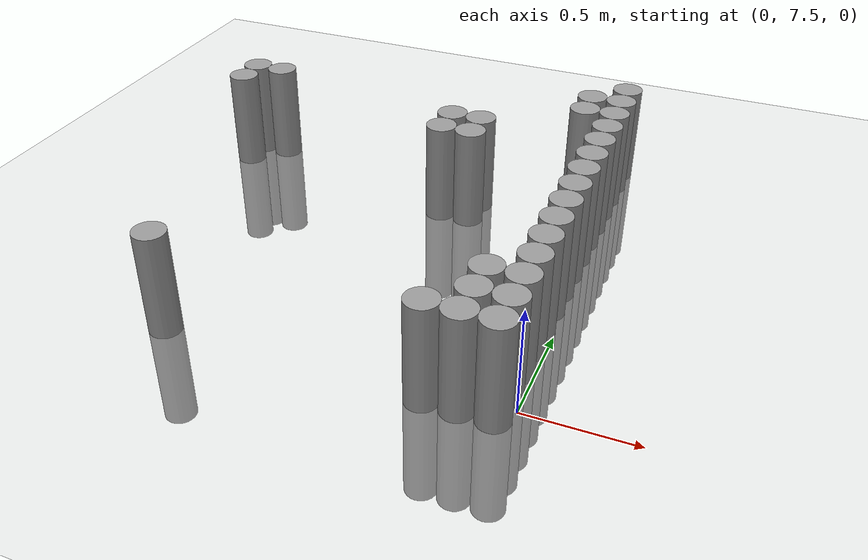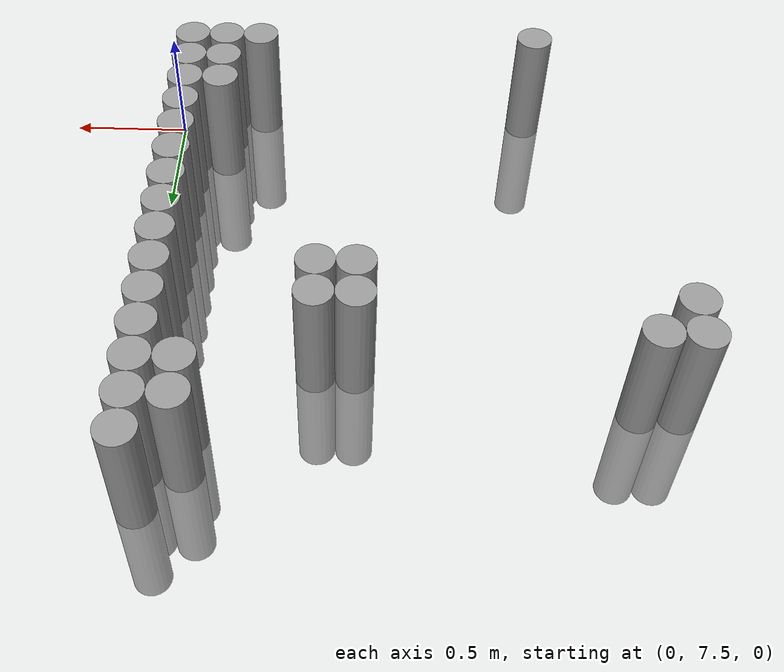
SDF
<sdf version="1.6">
 <world name="default">
  <model name="ground_plane">
   <static>1</static>
   <static>1</static>
   <link name="link">
    <collision name="collision">
     <geometry><plane><normal>0 0 1</normal><size>100 100</size></plane></geometry>
     <surface><friction><ode><mu>100</mu><mu2>50</mu2></ode></friction></surface>
    </collision>
    <visual name="visual">
     <cast_shadows>0</cast_shadows>
     <geometry><plane><normal>0 0 1</normal><size>100 100</size></plane></geometry>
     <material>
      <script><uri>file://media/materials/scripts/gazebo.material</uri><name>Gazebo/Grey</name></script>
     </material>
    </visual>
   </link>
  </model>
  <model name="unit_cylinder_164">
   <static>1</static>
   <pose>-2.025000 8.925000 0.000000 0.000000 0.000000 0.000000</pose>
   <link name="link">
    <inertial>
     <mass>1</mass>
     <inertia><ixx>0.145833</ixx><ixy>0</ixy><ixz>0</ixz><iyy>0.145833</iyy><iyz>0</iyz><izz>0.125</izz></inertia>
    </inertial>
    <collision name="collision">
     <geometry><cylinder><radius>0.075000</radius><length>1</length></cylinder></geometry>
    </collision>
    <visual name="visual">
     <geometry><cylinder><radius>0.075000</radius><length>1</length></cylinder></geometry>
     <material>
      <script><name>Gazebo/Grey</name><uri>file://media/materials/scripts/gazebo.material</uri></script>
     </material>
    </visual>
   </link>
  </model>
  <model name="unit_cylinder_165">
   <static>1</static>
   <pose>-2.025000 9.075000 0.000000 0.000000 0.000000 0.000000</pose>
   <link name="link">
    <inertial>
     <mass>1</mass>
     <inertia><ixx>0.145833</ixx><ixy>0</ixy><ixz>0</ixz><iyy>0.145833</iyy><iyz>0</iyz><izz>0.125</izz></inertia>
    </inertial>
    <collision name="collision">
     <geometry><cylinder><radius>0.075000</radius><length>1</length></cylinder></geometry>
    </collision>
    <visual name="visual">
     <geometry><cylinder><radius>0.075000</radius><length>1</length></cylinder></geometry>
     <material>
      <script><name>Gazebo/Grey</name><uri>file://media/materials/scripts/gazebo.material</uri></script>
     </material>
    </visual>
   </link>
  </model>
  <model name="unit_cylinder_169">
   <static>1</static>
   <pose>-1.875000 9.075000 0.000000 0.000000 0.000000 0.000000</pose>
   <link name="link">
    <inertial>
     <mass>1</mass>
     <inertia><ixx>0.145833</ixx><ixy>0</ixy><ixz>0</ixz><iyy>0.145833</iyy><iyz>0</iyz><izz>0.125</izz></inertia>
    </inertial>
    <collision name="collision">
     <geometry><cylinder><radius>0.075000</radius><length>1</length></cylinder></geometry>
    </collision>
    <visual name="visual">
     <geometry><cylinder><radius>0.075000</radius><length>1</length></cylinder></geometry>
     <material>
      <script><name>Gazebo/Grey</name><uri>file://media/materials/scripts/gazebo.material</uri></script>
     </material>
    </visual>
   </link>
  </model>
  <model name="unit_cylinder_177">
   <static>1</static>
   <pose>-1.575000 7.425000 0.000000 0.000000 0.000000 0.000000</pose>
   <link name="link">
    <inertial>
     <mass>1</mass>
     <inertia><ixx>0.145833</ixx><ixy>0</ixy><ixz>0</ixz><iyy>0.145833</iyy><iyz>0</iyz><izz>0.125</izz></inertia>
    </inertial>
    <collision name="collision">
     <geometry><cylinder><radius>0.075000</radius><length>1</length></cylinder></geometry>
    </collision>
    <visual name="visual">
     <geometry><cylinder><radius>0.075000</radius><length>1</length></cylinder></geometry>
     <material>
      <script><name>Gazebo/Grey</name><uri>file://media/materials/scripts/gazebo.material</uri></script>
     </material>
    </visual>
   </link>
  </model>
  <model name="unit_cylinder_182">
   <static>1</static>
   <pose>-0.825000 8.775000 0.000000 0.000000 0.000000 0.000000</pose>
   <link name="link">
    <inertial>
     <mass>1</mass>
     <inertia><ixx>0.145833</ixx><ixy>0</ixy><ixz>0</ixz><iyy>0.145833</iyy><iyz>0</iyz><izz>0.125</izz></inertia>
    </inertial>
    <collision name="collision">
     <geometry><cylinder><radius>0.075000</radius><length>1</length></cylinder></geometry>
    </collision>
    <visual name="visual">
     <geometry><cylinder><radius>0.075000</radius><length>1</length></cylinder></geometry>
     <material>
      <script><name>Gazebo/Grey</name><uri>file://media/materials/scripts/gazebo.material</uri></script>
     </material>
    </visual>
   </link>
  </model>
  <model name="unit_cylinder_183">
   <static>1</static>
   <pose>-0.825000 8.925000 0.000000 0.000000 0.000000 0.000000</pose>
   <link name="link">
    <inertial>
     <mass>1</mass>
     <inertia><ixx>0.145833</ixx><ixy>0</ixy><ixz>0</ixz><iyy>0.145833</iyy><iyz>0</iyz><izz>0.125</izz></inertia>
    </inertial>
    <collision name="collision">
     <geometry><cylinder><radius>0.075000</radius><length>1</length></cylinder></geometry>
    </collision>
    <visual name="visual">
     <geometry><cylinder><radius>0.075000</radius><length>1</length></cylinder></geometry>
     <material>
      <script><name>Gazebo/Grey</name><uri>file://media/materials/scripts/gazebo.material</uri></script>
     </material>
    </visual>
   </link>
  </model>
  <model name="unit_cylinder_184">
   <static>1</static>
   <pose>-0.675000 8.775000 0.000000 0.000000 0.000000 0.000000</pose>
   <link name="link">
    <inertial>
     <mass>1</mass>
     <inertia><ixx>0.145833</ixx><ixy>0</ixy><ixz>0</ixz><iyy>0.145833</iyy><iyz>0</iyz><izz>0.125</izz></inertia>
    </inertial>
    <collision name="collision">
     <geometry><cylinder><radius>0.075000</radius><length>1</length></cylinder></geometry>
    </collision>
    <visual name="visual">
     <geometry><cylinder><radius>0.075000</radius><length>1</length></cylinder></geometry>
     <material>
      <script><name>Gazebo/Grey</name><uri>file://media/materials/scripts/gazebo.material</uri></script>
     </material>
    </visual>
   </link>
  </model>
  <model name="unit_cylinder_185">
   <static>1</static>
   <pose>-0.675000 8.925000 0.000000 0.000000 0.000000 0.000000</pose>
   <link name="link">
    <inertial>
     <mass>1</mass>
     <inertia><ixx>0.145833</ixx><ixy>0</ixy><ixz>0</ixz><iyy>0.145833</iyy><iyz>0</iyz><izz>0.125</izz></inertia>
    </inertial>
    <collision name="collision">
     <geometry><cylinder><radius>0.075000</radius><length>1</length></cylinder></geometry>
    </collision>
    <visual name="visual">
     <geometry><cylinder><radius>0.075000</radius><length>1</length></cylinder></geometry>
     <material>
      <script><name>Gazebo/Grey</name><uri>file://media/materials/scripts/gazebo.material</uri></script>
     </material>
    </visual>
   </link>
  </model>
  <model name="unit_cylinder_187">
   <static>1</static>
   <pose>-0.375000 7.425000 0.000000 0.000000 0.000000 0.000000</pose>
   <link name="link">
    <inertial>
     <mass>1</mass>
     <inertia><ixx>0.145833</ixx><ixy>0</ixy><ixz>0</ixz><iyy>0.145833</iyy><iyz>0</iyz><izz>0.125</izz></inertia>
    </inertial>
    <collision name="collision">
     <geometry><cylinder><radius>0.075000</radius><length>1</length></cylinder></geometry>
    </collision>
    <visual name="visual">
     <geometry><cylinder><radius>0.075000</radius><length>1</length></cylinder></geometry>
     <material>
      <script><name>Gazebo/Grey</name><uri>file://media/materials/scripts/gazebo.material</uri></script>
     </material>
    </visual>
   </link>
  </model>
  <model name="unit_cylinder_192">
   <static>1</static>
   <pose>-0.225000 7.425000 0.000000 0.000000 0.000000 0.000000</pose>
   <link name="link">
    <inertial>
     <mass>1</mass>
     <inertia><ixx>0.145833</ixx><ixy>0</ixy><ixz>0</ixz><iyy>0.145833</iyy><iyz>0</iyz><izz>0.125</izz></inertia>
    </inertial>
    <collision name="collision">
     <geometry><cylinder><radius>0.075000</radius><length>1</length></cylinder></geometry>
    </collision>
    <visual name="visual">
     <geometry><cylinder><radius>0.075000</radius><length>1</length></cylinder></geometry>
     <material>
      <script><name>Gazebo/Grey</name><uri>file://media/materials/scripts/gazebo.material</uri></script>
     </material>
    </visual>
   </link>
  </model>
  <model name="unit_cylinder_193">
   <static>1</static>
   <pose>-0.225000 7.575000 0.000000 0.000000 0.000000 0.000000</pose>
   <link name="link">
    <inertial>
     <mass>1</mass>
     <inertia><ixx>0.145833</ixx><ixy>0</ixy><ixz>0</ixz><iyy>0.145833</iyy><iyz>0</iyz><izz>0.125</izz></inertia>
    </inertial>
    <collision name="collision">
     <geometry><cylinder><radius>0.075000</radius><length>1</length></cylinder></geometry>
    </collision>
    <visual name="visual">
     <geometry><cylinder><radius>0.075000</radius><length>1</length></cylinder></geometry>
     <material>
      <script><name>Gazebo/Grey</name><uri>file://media/materials/scripts/gazebo.material</uri></script>
     </material>
    </visual>
   </link>
  </model>
  <model name="unit_cylinder_194">
   <static>1</static>
   <pose>-0.225000 7.725000 0.000000 0.000000 0.000000 0.000000</pose>
   <link name="link">
    <inertial>
     <mass>1</mass>
     <inertia><ixx>0.145833</ixx><ixy>0</ixy><ixz>0</ixz><iyy>0.145833</iyy><iyz>0</iyz><izz>0.125</izz></inertia>
    </inertial>
    <collision name="collision">
     <geometry><cylinder><radius>0.075000</radius><length>1</length></cylinder></geometry>
    </collision>
    <visual name="visual">
     <geometry><cylinder><radius>0.075000</radius><length>1</length></cylinder></geometry>
     <material>
      <script><name>Gazebo/Grey</name><uri>file://media/materials/scripts/gazebo.material</uri></script>
     </material>
    </visual>
   </link>
  </model>
  <model name="unit_cylinder_195">
   <static>1</static>
   <pose>-0.225000 9.225000 0.000000 0.000000 0.000000 0.000000</pose>
   <link name="link">
    <inertial>
     <mass>1</mass>
     <inertia><ixx>0.145833</ixx><ixy>0</ixy><ixz>0</ixz><iyy>0.145833</iyy><iyz>0</iyz><izz>0.125</izz></inertia>
    </inertial>
    <collision name="collision">
     <geometry><cylinder><radius>0.075000</radius><length>1</length></cylinder></geometry>
    </collision>
    <visual name="visual">
     <geometry><cylinder><radius>0.075000</radius><length>1</length></cylinder></geometry>
     <material>
      <script><name>Gazebo/Grey</name><uri>file://media/materials/scripts/gazebo.material</uri></script>
     </material>
    </visual>
   </link>
  </model>
  <model name="unit_cylinder_196">
   <static>1</static>
   <pose>-0.225000 9.375000 0.000000 0.000000 0.000000 0.000000</pose>
   <link name="link">
    <inertial>
     <mass>1</mass>
     <inertia><ixx>0.145833</ixx><ixy>0</ixy><ixz>0</ixz><iyy>0.145833</iyy><iyz>0</iyz><izz>0.125</izz></inertia>
    </inertial>
    <collision name="collision">
     <geometry><cylinder><radius>0.075000</radius><length>1</length></cylinder></geometry>
    </collision>
    <visual name="visual">
     <geometry><cylinder><radius>0.075000</radius><length>1</length></cylinder></geometry>
     <material>
      <script><name>Gazebo/Grey</name><uri>file://media/materials/scripts/gazebo.material</uri></script>
     </material>
    </visual>
   </link>
  </model>
  <model name="unit_cylinder_212">
   <static>1</static>
   <pose>-0.075000 7.425000 0.000000 0.000000 0.000000 0.000000</pose>
   <link name="link">
    <inertial>
     <mass>1</mass>
     <inertia><ixx>0.145833</ixx><ixy>0</ixy><ixz>0</ixz><iyy>0.145833</iyy><iyz>0</iyz><izz>0.125</izz></inertia>
    </inertial>
    <collision name="collision">
     <geometry><cylinder><radius>0.075000</radius><length>1</length></cylinder></geometry>
    </collision>
    <visual name="visual">
     <geometry><cylinder><radius>0.075000</radius><length>1</length></cylinder></geometry>
     <material>
      <script><name>Gazebo/Grey</name><uri>file://media/materials/scripts/gazebo.material</uri></script>
     </material>
    </visual>
   </link>
  </model>
  <model name="unit_cylinder_213">
   <static>1</static>
   <pose>-0.075000 7.575000 0.000000 0.000000 0.000000 0.000000</pose>
   <link name="link">
    <inertial>
     <mass>1</mass>
     <inertia><ixx>0.145833</ixx><ixy>0</ixy><ixz>0</ixz><iyy>0.145833</iyy><iyz>0</iyz><izz>0.125</izz></inertia>
    </inertial>
    <collision name="collision">
     <geometry><cylinder><radius>0.075000</radius><length>1</length></cylinder></geometry>
    </collision>
    <visual name="visual">
     <geometry><cylinder><radius>0.075000</radius><length>1</length></cylinder></geometry>
     <material>
      <script><name>Gazebo/Grey</name><uri>file://media/materials/scripts/gazebo.material</uri></script>
     </material>
    </visual>
   </link>
  </model>
  <model name="unit_cylinder_214">
   <static>1</static>
   <pose>-0.075000 7.725000 0.000000 0.000000 0.000000 0.000000</pose>
   <link name="link">
    <inertial>
     <mass>1</mass>
     <inertia><ixx>0.145833</ixx><ixy>0</ixy><ixz>0</ixz><iyy>0.145833</iyy><iyz>0</iyz><izz>0.125</izz></inertia>
    </inertial>
    <collision name="collision">
     <geometry><cylinder><radius>0.075000</radius><length>1</length></cylinder></geometry>
    </collision>
    <visual name="visual">
     <geometry><cylinder><radius>0.075000</radius><length>1</length></cylinder></geometry>
     <material>
      <script><name>Gazebo/Grey</name><uri>file://media/materials/scripts/gazebo.material</uri></script>
     </material>
    </visual>
   </link>
  </model>
  <model name="unit_cylinder_215">
   <static>1</static>
   <pose>-0.075000 7.875000 0.000000 0.000000 0.000000 0.000000</pose>
   <link name="link">
    <inertial>
     <mass>1</mass>
     <inertia><ixx>0.145833</ixx><ixy>0</ixy><ixz>0</ixz><iyy>0.145833</iyy><iyz>0</iyz><izz>0.125</izz></inertia>
    </inertial>
    <collision name="collision">
     <geometry><cylinder><radius>0.075000</radius><length>1</length></cylinder></geometry>
    </collision>
    <visual name="visual">
     <geometry><cylinder><radius>0.075000</radius><length>1</length></cylinder></geometry>
     <material>
      <script><name>Gazebo/Grey</name><uri>file://media/materials/scripts/gazebo.material</uri></script>
     </material>
    </visual>
   </link>
  </model>
  <model name="unit_cylinder_216">
   <static>1</static>
   <pose>-0.075000 8.025000 0.000000 0.000000 0.000000 0.000000</pose>
   <link name="link">
    <inertial>
     <mass>1</mass>
     <inertia><ixx>0.145833</ixx><ixy>0</ixy><ixz>0</ixz><iyy>0.145833</iyy><iyz>0</iyz><izz>0.125</izz></inertia>
    </inertial>
    <collision name="collision">
     <geometry><cylinder><radius>0.075000</radius><length>1</length></cylinder></geometry>
    </collision>
    <visual name="visual">
     <geometry><cylinder><radius>0.075000</radius><length>1</length></cylinder></geometry>
     <material>
      <script><name>Gazebo/Grey</name><uri>file://media/materials/scripts/gazebo.material</uri></script>
     </material>
    </visual>
   </link>
  </model>
  <model name="unit_cylinder_217">
   <static>1</static>
   <pose>-0.075000 8.175000 0.000000 0.000000 0.000000 0.000000</pose>
   <link name="link">
    <inertial>
     <mass>1</mass>
     <inertia><ixx>0.145833</ixx><ixy>0</ixy><ixz>0</ixz><iyy>0.145833</iyy><iyz>0</iyz><izz>0.125</izz></inertia>
    </inertial>
    <collision name="collision">
     <geometry><cylinder><radius>0.075000</radius><length>1</length></cylinder></geometry>
    </collision>
    <visual name="visual">
     <geometry><cylinder><radius>0.075000</radius><length>1</length></cylinder></geometry>
     <material>
      <script><name>Gazebo/Grey</name><uri>file://media/materials/scripts/gazebo.material</uri></script>
     </material>
    </visual>
   </link>
  </model>
  <model name="unit_cylinder_218">
   <static>1</static>
   <pose>-0.075000 8.325000 0.000000 0.000000 0.000000 0.000000</pose>
   <link name="link">
    <inertial>
     <mass>1</mass>
     <inertia><ixx>0.145833</ixx><ixy>0</ixy><ixz>0</ixz><iyy>0.145833</iyy><iyz>0</iyz><izz>0.125</izz></inertia>
    </inertial>
    <collision name="collision">
     <geometry><cylinder><radius>0.075000</radius><length>1</length></cylinder></geometry>
    </collision>
    <visual name="visual">
     <geometry><cylinder><radius>0.075000</radius><length>1</length></cylinder></geometry>
     <material>
      <script><name>Gazebo/Grey</name><uri>file://media/materials/scripts/gazebo.material</uri></script>
     </material>
    </visual>
   </link>
  </model>
  <model name="unit_cylinder_219">
   <static>1</static>
   <pose>-0.075000 8.475000 0.000000 0.000000 0.000000 0.000000</pose>
   <link name="link">
    <inertial>
     <mass>1</mass>
     <inertia><ixx>0.145833</ixx><ixy>0</ixy><ixz>0</ixz><iyy>0.145833</iyy><iyz>0</iyz><izz>0.125</izz></inertia>
    </inertial>
    <collision name="collision">
     <geometry><cylinder><radius>0.075000</radius><length>1</length></cylinder></geometry>
    </collision>
    <visual name="visual">
     <geometry><cylinder><radius>0.075000</radius><length>1</length></cylinder></geometry>
     <material>
      <script><name>Gazebo/Grey</name><uri>file://media/materials/scripts/gazebo.material</uri></script>
     </material>
    </visual>
   </link>
  </model>
  <model name="unit_cylinder_220">
   <static>1</static>
   <pose>-0.075000 8.625000 0.000000 0.000000 0.000000 0.000000</pose>
   <link name="link">
    <inertial>
     <mass>1</mass>
     <inertia><ixx>0.145833</ixx><ixy>0</ixy><ixz>0</ixz><iyy>0.145833</iyy><iyz>0</iyz><izz>0.125</izz></inertia>
    </inertial>
    <collision name="collision">
     <geometry><cylinder><radius>0.075000</radius><length>1</length></cylinder></geometry>
    </collision>
    <visual name="visual">
     <geometry><cylinder><radius>0.075000</radius><length>1</length></cylinder></geometry>
     <material>
      <script><name>Gazebo/Grey</name><uri>file://media/materials/scripts/gazebo.material</uri></script>
     </material>
    </visual>
   </link>
  </model>
  <model name="unit_cylinder_221">
   <static>1</static>
   <pose>-0.075000 8.775000 0.000000 0.000000 0.000000 0.000000</pose>
   <link name="link">
    <inertial>
     <mass>1</mass>
     <inertia><ixx>0.145833</ixx><ixy>0</ixy><ixz>0</ixz><iyy>0.145833</iyy><iyz>0</iyz><izz>0.125</izz></inertia>
    </inertial>
    <collision name="collision">
     <geometry><cylinder><radius>0.075000</radius><length>1</length></cylinder></geometry>
    </collision>
    <visual name="visual">
     <geometry><cylinder><radius>0.075000</radius><length>1</length></cylinder></geometry>
     <material>
      <script><name>Gazebo/Grey</name><uri>file://media/materials/scripts/gazebo.material</uri></script>
     </material>
    </visual>
   </link>
  </model>
  <model name="unit_cylinder_222">
   <static>1</static>
   <pose>-0.075000 8.925000 0.000000 0.000000 0.000000 0.000000</pose>
   <link name="link">
    <inertial>
     <mass>1</mass>
     <inertia><ixx>0.145833</ixx><ixy>0</ixy><ixz>0</ixz><iyy>0.145833</iyy><iyz>0</iyz><izz>0.125</izz></inertia>
    </inertial>
    <collision name="collision">
     <geometry><cylinder><radius>0.075000</radius><length>1</length></cylinder></geometry>
    </collision>
    <visual name="visual">
     <geometry><cylinder><radius>0.075000</radius><length>1</length></cylinder></geometry>
     <material>
      <script><name>Gazebo/Grey</name><uri>file://media/materials/scripts/gazebo.material</uri></script>
     </material>
    </visual>
   </link>
  </model>
  <model name="unit_cylinder_223">
   <static>1</static>
   <pose>-0.075000 9.075000 0.000000 0.000000 0.000000 0.000000</pose>
   <link name="link">
    <inertial>
     <mass>1</mass>
     <inertia><ixx>0.145833</ixx><ixy>0</ixy><ixz>0</ixz><iyy>0.145833</iyy><iyz>0</iyz><izz>0.125</izz></inertia>
    </inertial>
    <collision name="collision">
     <geometry><cylinder><radius>0.075000</radius><length>1</length></cylinder></geometry>
    </collision>
    <visual name="visual">
     <geometry><cylinder><radius>0.075000</radius><length>1</length></cylinder></geometry>
     <material>
      <script><name>Gazebo/Grey</name><uri>file://media/materials/scripts/gazebo.material</uri></script>
     </material>
    </visual>
   </link>
  </model>
  <model name="unit_cylinder_224">
   <static>1</static>
   <pose>-0.075000 9.225000 0.000000 0.000000 0.000000 0.000000</pose>
   <link name="link">
    <inertial>
     <mass>1</mass>
     <inertia><ixx>0.145833</ixx><ixy>0</ixy><ixz>0</ixz><iyy>0.145833</iyy><iyz>0</iyz><izz>0.125</izz></inertia>
    </inertial>
    <collision name="collision">
     <geometry><cylinder><radius>0.075000</radius><length>1</length></cylinder></geometry>
    </collision>
    <visual name="visual">
     <geometry><cylinder><radius>0.075000</radius><length>1</length></cylinder></geometry>
     <material>
      <script><name>Gazebo/Grey</name><uri>file://media/materials/scripts/gazebo.material</uri></script>
     </material>
    </visual>
   </link>
  </model>
  <model name="unit_cylinder_225">
   <static>1</static>
   <pose>-0.075000 9.375000 0.000000 0.000000 0.000000 0.000000</pose>
   <link name="link">
    <inertial>
     <mass>1</mass>
     <inertia><ixx>0.145833</ixx><ixy>0</ixy><ixz>0</ixz><iyy>0.145833</iyy><iyz>0</iyz><izz>0.125</izz></inertia>
    </inertial>
    <collision name="collision">
     <geometry><cylinder><radius>0.075000</radius><length>1</length></cylinder></geometry>
    </collision>
    <visual name="visual">
     <geometry><cylinder><radius>0.075000</radius><length>1</length></cylinder></geometry>
     <material>
      <script><name>Gazebo/Grey</name><uri>file://media/materials/scripts/gazebo.material</uri></script>
     </material>
    </visual>
   </link>
  </model>
  <model name="unit_cylinder_226">
   <static>1</static>
   <pose>-0.075000 9.525000 0.000000 0.000000 0.000000 0.000000</pose>
   <link name="link">
    <inertial>
     <mass>1</mass>
     <inertia><ixx>0.145833</ixx><ixy>0</ixy><ixz>0</ixz><iyy>0.145833</iyy><iyz>0</iyz><izz>0.125</izz></inertia>
    </inertial>
    <collision name="collision">
     <geometry><cylinder><radius>0.075000</radius><length>1</length></cylinder></geometry>
    </collision>
    <visual name="visual">
     <geometry><cylinder><radius>0.075000</radius><length>1</length></cylinder></geometry>
     <material>
      <script><name>Gazebo/Grey</name><uri>file://media/materials/scripts/gazebo.material</uri></script>
     </material>
    </visual>
   </link>
  </model>
 </world>
</sdf>
